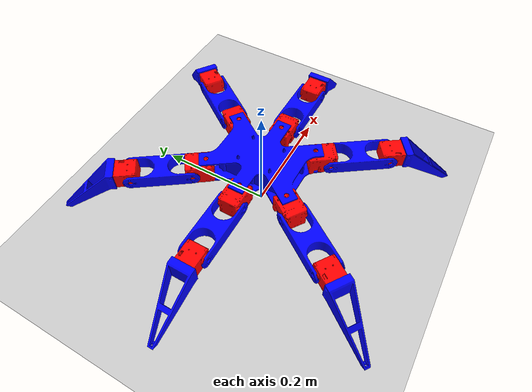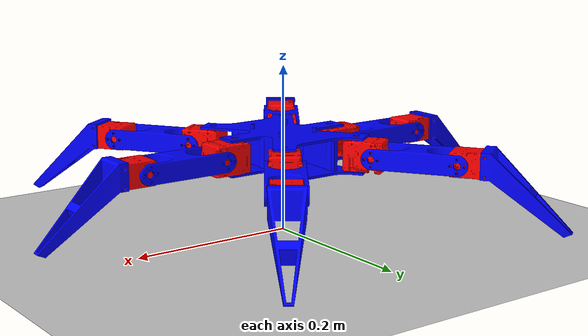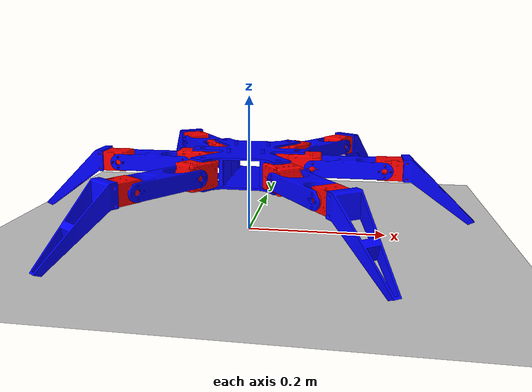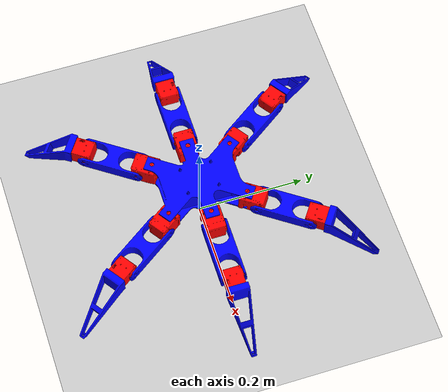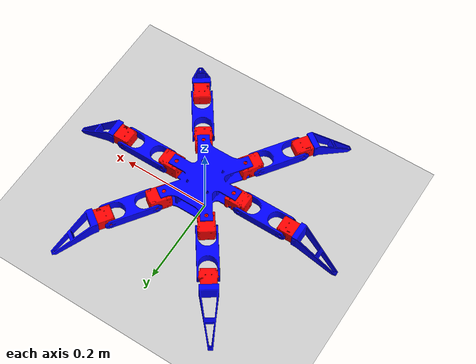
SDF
<?xml version="1.0"?>
<sdf version="1.10">
  <world name="hexspider_world">
    <physics name="5ms" type="ignored">
      <max_step_size>0.001</max_step_size>
      <real_time_factor>1.0</real_time_factor>
    </physics>
    <plugin filename="gz-sim-physics-system" name="gz::sim::systems::Physics">
        </plugin>
    <plugin filename="gz-sim-user-commands-system" name="gz::sim::systems::UserCommands">
        </plugin>
    <plugin filename="gz-sim-scene-broadcaster-system" name="gz::sim::systems::SceneBroadcaster">
        </plugin>

    <gui fullscreen="1">
    </gui>

    <light type="directional" name="sun">
      <cast_shadows>true</cast_shadows>
      <pose>0 0 10 0 0 0</pose>
      <diffuse>0.8 0.8 0.8 1</diffuse>
      <specular>0.2 0.2 0.2 1</specular>
      <attenuation>
        <range>1000</range>
        <constant>0.9</constant>
        <linear>0.01</linear>
        <quadratic>0.001</quadratic>
      </attenuation>
      <direction>-0.5 0.1 -0.9</direction>
    </light>
    <model name="ground_plane">
      <static>true</static>
      <link name="link">
        <collision name="collision">
          <geometry>
            <plane>
              <normal>0 0 1</normal>
            </plane>
          </geometry>
          <surface>
      </surface>
        </collision>
        <visual name="visual">
          <geometry>
            <plane>
              <normal>0 0 1</normal>
              <size>100 100</size>
            </plane>
          </geometry>
          <material>
            <ambient>0.8 0.8 0.8 1</ambient>
            <diffuse>0.8 0.8 0.8 1</diffuse>
            <specular>0.8 0.8 0.8 1</specular>
          </material>
        </visual>
      </link>
    </model>
    <include>
      <uri>model://models/hexspider</uri>
    </include>
  </world>
</sdf>

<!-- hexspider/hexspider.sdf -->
<sdf version="1.10">
  <model name="hexspider" canonical_link="chassis">
    <pose>0 0 0 0 0 0</pose>
    <plugin filename="gz-sim-joint-state-publisher-system" name="gz::sim::systems::JointStatePublisher"></plugin>
    <plugin filename="gz-sim-joint-position-controller-system" name="gz::sim::systems::JointPositionController">
      <joint_name>leg_a_servo_1</joint_name>
      <p_gain>10</p_gain>
    </plugin>
    <plugin filename="gz-sim-joint-position-controller-system" name="gz::sim::systems::JointPositionController">
      <joint_name>leg_a_servo_2</joint_name>
      <p_gain>10</p_gain>
    </plugin>
    <plugin filename="gz-sim-joint-position-controller-system" name="gz::sim::systems::JointPositionController">
      <joint_name>leg_a_servo_3</joint_name>
      <p_gain>10</p_gain>
    </plugin>
    <plugin filename="gz-sim-joint-position-controller-system" name="gz::sim::systems::JointPositionController">
      <joint_name>leg_b_servo_1</joint_name>
      <p_gain>10</p_gain>
    </plugin>
    <plugin filename="gz-sim-joint-position-controller-system" name="gz::sim::systems::JointPositionController">
      <joint_name>leg_b_servo_2</joint_name>
      <p_gain>10</p_gain>
    </plugin>
    <plugin filename="gz-sim-joint-position-controller-system" name="gz::sim::systems::JointPositionController">
      <joint_name>leg_b_servo_3</joint_name>
      <p_gain>10</p_gain>
    </plugin>
    <plugin filename="gz-sim-joint-position-controller-system" name="gz::sim::systems::JointPositionController">
      <joint_name>leg_c_servo_1</joint_name>
      <p_gain>10</p_gain>
    </plugin>
    <plugin filename="gz-sim-joint-position-controller-system" name="gz::sim::systems::JointPositionController">
      <joint_name>leg_c_servo_2</joint_name>
      <p_gain>10</p_gain>
    </plugin>
    <plugin filename="gz-sim-joint-position-controller-system" name="gz::sim::systems::JointPositionController">
      <joint_name>leg_c_servo_3</joint_name>
      <p_gain>10</p_gain>
    </plugin>
    <plugin filename="gz-sim-joint-position-controller-system" name="gz::sim::systems::JointPositionController">
      <joint_name>leg_d_servo_1</joint_name>
      <p_gain>10</p_gain>
    </plugin>
    <plugin filename="gz-sim-joint-position-controller-system" name="gz::sim::systems::JointPositionController">
      <joint_name>leg_d_servo_2</joint_name>
      <p_gain>10</p_gain>
    </plugin>
    <plugin filename="gz-sim-joint-position-controller-system" name="gz::sim::systems::JointPositionController">
      <joint_name>leg_d_servo_3</joint_name>
      <p_gain>10</p_gain>
    </plugin>
    <plugin filename="gz-sim-joint-position-controller-system" name="gz::sim::systems::JointPositionController">
      <joint_name>leg_e_servo_1</joint_name>
      <p_gain>10</p_gain>
    </plugin>
    <plugin filename="gz-sim-joint-position-controller-system" name="gz::sim::systems::JointPositionController">
      <joint_name>leg_e_servo_2</joint_name>
      <p_gain>10</p_gain>
    </plugin>
    <plugin filename="gz-sim-joint-position-controller-system" name="gz::sim::systems::JointPositionController">
      <joint_name>leg_e_servo_3</joint_name>
      <p_gain>10</p_gain>
    </plugin>
    <plugin filename="gz-sim-joint-position-controller-system" name="gz::sim::systems::JointPositionController">
      <joint_name>leg_f_servo_1</joint_name>
      <p_gain>10</p_gain>
    </plugin>
    <plugin filename="gz-sim-joint-position-controller-system" name="gz::sim::systems::JointPositionController">
      <joint_name>leg_f_servo_2</joint_name>
      <p_gain>10</p_gain>
    </plugin>
    <plugin filename="gz-sim-joint-position-controller-system" name="gz::sim::systems::JointPositionController">
      <joint_name>leg_f_servo_3</joint_name>
      <p_gain>10</p_gain>
    </plugin>
    <link name="chassis">
      <pose relative_to="__model__">0 0 0.1 0 0 0</pose>
      <inertial>
        <mass>0.188490</mass>
        <density>100</density>
        <inertia>
          <ixx>4.024e-04</ixx>
          <ixy>5.662e-19</ixy>
          <ixz>-5.234e-18</ixz>
          <iyy>2.646e-04</iyy>
          <iyz>0</iyz>
          <izz>5.502e-04</izz>
        </inertia>
      </inertial>
      <visual name="chassis_visual">
        <geometry>
          <mesh>
            <uri>model://hexspider/meshes/Chassis_v37.stl</uri>
            <scale>0.001 0.001 0.001</scale>
          </mesh>
        </geometry>
        <material>
          <ambient>0 0 1 1</ambient>
          <diffuse>0 0 1 1</diffuse>
          <specular>0 0 1 1</specular>
        </material>
        <transparency>0</transparency>
        <cast_shadows>1</cast_shadows>
      </visual>
      <collision name="chassis_collision">
        <geometry>
          <box>
            <size>0.164 0.182020 0.05</size>
          </box>
        </geometry>
      </collision>
    </link>
    <link name="leg_a_2xl_430">
      <pose relative_to="chassis">0.058219 -0.083748 0.0 0 0 0.61</pose>
      <inertial>
        <mass>0.098</mass>
        <inertia>
          <ixx>0.00002686</ixx>
          <ixy>0.000000525</ixy>
          <ixz>0.000000288</ixz>
          <iyy>0.000016993</iyy>
          <iyz>-0.000000524</iyz>
          <izz>0.000026995</izz>
        </inertia>
      </inertial>
      <visual name="visual">
        <geometry>
          <mesh>
            <uri>model://hexspider/meshes/2XL-430_v4.stl</uri>
            <scale>0.001 0.001 0.001</scale>
          </mesh>
        </geometry>
        <material>
          <ambient>1.0 0.0 0.0 1</ambient>
          <diffuse>1.0 0.0 0.0 1</diffuse>
          <specular>1.0 0.0 0.0 1</specular>
        </material>
        <transparency>0</transparency>
        <cast_shadows>1</cast_shadows>
      </visual>
      <collision name="collision">
        <geometry>
          <box>
            <size>0.036 0.0465 0.036</size>
          </box>
        </geometry>
      </collision>
    </link>
    <link name="leg_a_coxa">
      <pose relative_to="leg_a_2xl_430">0 -0.062 0 0 0 0</pose>
      <inertial>
        <mass>0.059976</mass>
        <inertia>
          <ixx>0.000019426</ixx>
          <ixy>-7.7e-11</ixy>
          <ixz>4.885e-14</ixz>
          <iyy>0.000032981</iyy>
          <iyz>0</iyz>
          <izz>0.000046665</izz>
        </inertia>
      </inertial>
      <visual name="visual">
        <pose relative_to="leg_a_coxa">0.0 -0.144 0 0 0 1.57</pose>
        <geometry>
          <mesh>
            <uri>model://hexspider/meshes/Coxa_v37.stl</uri>
            <scale>0.001 0.001 0.001</scale>
          </mesh>
        </geometry>
        <material>
          <ambient>0 0 1 1</ambient>
          <diffuse>0 0 1 1</diffuse>
          <specular>0 0 1 1</specular>
        </material>
        <transparency>0</transparency>
        <cast_shadows>1</cast_shadows>
      </visual>
      <collision name="collision">
        <geometry>
          <box>
            <size>0.046 0.124 0.024</size>
          </box>
        </geometry>
      </collision>
    </link>
    <link name="leg_a_xl_430">
      <pose relative_to="leg_a_coxa">0.0 -0.05 0.0 0.0 1.57 0.0</pose>
      <inertial>
        <mass>0.098</mass>
        <inertia>
          <ixx>0.00002686</ixx>
          <ixy>0.000000525</ixy>
          <ixz>0.000000288</ixz>
          <iyy>0.000016993</iyy>
          <iyz>-0.000000524</iyz>
          <izz>0.000026995</izz>
        </inertia>
      </inertial>
      <visual name="visual">
        <geometry>
          <mesh>
            <uri>model://hexspider/meshes/XL-430_new_v2.stl</uri>
            <scale>0.001 0.001 0.001</scale>
          </mesh>
        </geometry>
        <material>
          <ambient>1 0 0 1</ambient>
          <diffuse>1 0 0 1</diffuse>
          <specular>1 0 0 1</specular>
        </material>
        <transparency>0</transparency>
        <cast_shadows>1</cast_shadows>
      </visual>
      <collision name="collision">
        <geometry>
          <box>
            <size>0.0285 0.0465 0.034</size>
          </box>
        </geometry>
      </collision>
    </link>
    <link name="leg_a_femur">
      <pose relative_to="leg_a_xl_430">0.04511 -0.06325 0 1.57 0.0 -1.57</pose>
      <inertial>
        <mass>0.028812</mass>
        <inertia>
          <ixx>0.000034156</ixx>
          <ixy>0</ixy>
          <ixz>0.000012503</ixz>
          <iyy>0.000036442</iyy>
          <iyz>0</iyz>
          <izz>0.000010478</izz>
        </inertia>
      </inertial>
      <visual name="visual">
        <pose relative_to="leg_a_femur">-0.24056 0.0 -0.038 0 -0.44 0</pose>
        <geometry>
          <mesh>
            <uri>model://hexspider/meshes/Femur_v41.stl</uri>
            <scale>0.001 0.001 0.001</scale>
          </mesh>
        </geometry>
        <material>
          <ambient>0 0 1 1</ambient>
          <diffuse>0 0 1 1</diffuse>
          <specular>0 0 1 1</specular>
        </material>
        <transparency>0</transparency>
        <cast_shadows>1</cast_shadows>
      </visual>
      <collision name="collision">
        <pose relative_to="leg_a_femur">0 0 0.012 0 -0.96 0</pose>
        <geometry>
          <cylinder>
           <radius>0.005</radius>
           <length>0.150</length>
           </cylinder>
        </geometry>
      </collision>
    </link>
    <link name="leg_b_2xl_430">
      <pose relative_to="chassis">0.082 0 0.0 0 0 1.57</pose>
      <inertial>
        <mass>0.098</mass>
        <inertia>
          <ixx>0.00002686</ixx>
          <ixy>0.000000525</ixy>
          <ixz>0.000000288</ixz>
          <iyy>0.000016993</iyy>
          <iyz>-0.000000524</iyz>
          <izz>0.000026995</izz>
        </inertia>
      </inertial>
      <visual name="visual">
        <geometry>
          <mesh>
            <uri>model://hexspider/meshes/2XL-430_v4.stl</uri>
            <scale>0.001 0.001 0.001</scale>
          </mesh>
        </geometry>
        <material>
          <ambient>1.0 0.0 0.0 1</ambient>
          <diffuse>1.0 0.0 0.0 1</diffuse>
          <specular>1.0 0.0 0.0 1</specular>
        </material>
        <transparency>0</transparency>
        <cast_shadows>1</cast_shadows>
      </visual>
      <collision name="collision">
        <geometry>
          <box>
            <size>0.036 0.0465 0.036</size>
          </box>
        </geometry>
      </collision>
    </link>
    <link name="leg_b_coxa">
      <pose relative_to="leg_b_2xl_430">0 -0.062 0 0 0 0</pose>
      <inertial>
        <mass>0.059976</mass>
        <inertia>
          <ixx>0.000019426</ixx>
          <ixy>-7.7e-11</ixy>
          <ixz>4.885e-14</ixz>
          <iyy>0.000032981</iyy>
          <iyz>0</iyz>
          <izz>0.000046665</izz>
        </inertia>
      </inertial>
      <visual name="visual">
        <pose relative_to="leg_b_coxa">0.0 -0.144 0 0 0 1.57</pose>
        <geometry>
          <mesh>
            <uri>model://hexspider/meshes/Coxa_v37.stl</uri>
            <scale>0.001 0.001 0.001</scale>
          </mesh>
        </geometry>
        <material>
          <ambient>0 0 1 1</ambient>
          <diffuse>0 0 1 1</diffuse>
          <specular>0 0 1 1</specular>
        </material>
        <transparency>0</transparency>
        <cast_shadows>1</cast_shadows>
      </visual>
      <collision name="collision">
        <geometry>
          <box>
            <size>0.046 0.124 0.024</size>
          </box>
        </geometry>
      </collision>
    </link>
    <link name="leg_b_xl_430">
      <pose relative_to="leg_b_coxa">0.0 -0.05 0.0 0.0 1.57 0.0</pose>
      <inertial>
        <mass>0.098</mass>
        <inertia>
          <ixx>0.00002686</ixx>
          <ixy>0.000000525</ixy>
          <ixz>0.000000288</ixz>
          <iyy>0.000016993</iyy>
          <iyz>-0.000000524</iyz>
          <izz>0.000026995</izz>
        </inertia>
      </inertial>
      <visual name="visual">
        <geometry>
          <mesh>
            <uri>model://hexspider/meshes/XL-430_new_v2.stl</uri>
            <scale>0.001 0.001 0.001</scale>
          </mesh>
        </geometry>
        <material>
          <ambient>1 0 0 1</ambient>
          <diffuse>1 0 0 1</diffuse>
          <specular>1 0 0 1</specular>
        </material>
        <transparency>0</transparency>
        <cast_shadows>1</cast_shadows>
      </visual>
      <collision name="collision">
        <geometry>
          <box>
            <size>0.0285 0.0465 0.034</size>
          </box>
        </geometry>
      </collision>
    </link>
    <link name="leg_b_femur">
      <pose relative_to="leg_b_xl_430">0.04511 -0.06325 0 1.57 0.0 -1.57</pose>
      <inertial>
        <mass>0.028812</mass>
        <inertia>
          <ixx>0.000034156</ixx>
          <ixy>0</ixy>
          <ixz>0.000012503</ixz>
          <iyy>0.000036442</iyy>
          <iyz>0</iyz>
          <izz>0.000010478</izz>
        </inertia>
      </inertial>
      <visual name="visual">
        <pose relative_to="leg_b_femur">-0.24056 0.0 -0.038 0 -0.44 0</pose>
        <geometry>
          <mesh>
            <uri>model://hexspider/meshes/Femur_v41.stl</uri>
            <scale>0.001 0.001 0.001</scale>
          </mesh>
        </geometry>
        <material>
          <ambient>0 0 1 1</ambient>
          <diffuse>0 0 1 1</diffuse>
          <specular>0 0 1 1</specular>
        </material>
        <transparency>0</transparency>
        <cast_shadows>1</cast_shadows>
      </visual>
      <collision name="collision">
        <pose relative_to="leg_b_femur">0 0 0.012 0 -0.96 0</pose>
        <geometry>
          <cylinder>
           <radius>0.005</radius>
           <length>0.150</length>
           </cylinder>
        </geometry>
      </collision>
    </link>
    <link name="leg_c_2xl_430">
      <pose relative_to="chassis">0.058219 0.083748 0.0 0 0 2.53</pose>
      <inertial>
        <mass>0.098</mass>
        <inertia>
          <ixx>0.00002686</ixx>
          <ixy>0.000000525</ixy>
          <ixz>0.000000288</ixz>
          <iyy>0.000016993</iyy>
          <iyz>-0.000000524</iyz>
          <izz>0.000026995</izz>
        </inertia>
      </inertial>
      <visual name="visual">
        <geometry>
          <mesh>
            <uri>model://hexspider/meshes/2XL-430_v4.stl</uri>
            <scale>0.001 0.001 0.001</scale>
          </mesh>
        </geometry>
        <material>
          <ambient>1.0 0.0 0.0 1</ambient>
          <diffuse>1.0 0.0 0.0 1</diffuse>
          <specular>1.0 0.0 0.0 1</specular>
        </material>
        <transparency>0</transparency>
        <cast_shadows>1</cast_shadows>
      </visual>
      <collision name="collision">
        <geometry>
          <box>
            <size>0.036 0.0465 0.036</size>
          </box>
        </geometry>
      </collision>
    </link>
    <link name="leg_c_coxa">
      <pose relative_to="leg_c_2xl_430">0 -0.062 0 0 0 0</pose>
      <inertial>
        <mass>0.059976</mass>
        <inertia>
          <ixx>0.000019426</ixx>
          <ixy>-7.7e-11</ixy>
          <ixz>4.885e-14</ixz>
          <iyy>0.000032981</iyy>
          <iyz>0</iyz>
          <izz>0.000046665</izz>
        </inertia>
      </inertial>
      <visual name="visual">
        <pose relative_to="leg_c_coxa">0.0 -0.144 0 0 0 1.57</pose>
        <geometry>
          <mesh>
            <uri>model://hexspider/meshes/Coxa_v37.stl</uri>
            <scale>0.001 0.001 0.001</scale>
          </mesh>
        </geometry>
        <material>
          <ambient>0 0 1 1</ambient>
          <diffuse>0 0 1 1</diffuse>
          <specular>0 0 1 1</specular>
        </material>
        <transparency>0</transparency>
        <cast_shadows>1</cast_shadows>
      </visual>
      <collision name="collision">
        <geometry>
          <box>
            <size>0.046 0.124 0.024</size>
          </box>
        </geometry>
      </collision>
    </link>
    <link name="leg_c_xl_430">
      <pose relative_to="leg_c_coxa">0.0 -0.05 0.0 0.0 1.57 0.0</pose>
      <inertial>
        <mass>0.098</mass>
        <inertia>
          <ixx>0.00002686</ixx>
          <ixy>0.000000525</ixy>
          <ixz>0.000000288</ixz>
          <iyy>0.000016993</iyy>
          <iyz>-0.000000524</iyz>
          <izz>0.000026995</izz>
        </inertia>
      </inertial>
      <visual name="visual">
        <geometry>
          <mesh>
            <uri>model://hexspider/meshes/XL-430_new_v2.stl</uri>
            <scale>0.001 0.001 0.001</scale>
          </mesh>
        </geometry>
        <material>
          <ambient>1 0 0 1</ambient>
          <diffuse>1 0 0 1</diffuse>
          <specular>1 0 0 1</specular>
        </material>
        <transparency>0</transparency>
        <cast_shadows>1</cast_shadows>
      </visual>
      <collision name="collision">
        <geometry>
          <box>
            <size>0.0285 0.0465 0.034</size>
          </box>
        </geometry>
      </collision>
    </link>
    <link name="leg_c_femur">
      <pose relative_to="leg_c_xl_430">0.04511 -0.06325 0 1.57 0.0 -1.57</pose>
      <inertial>
        <mass>0.028812</mass>
        <inertia>
          <ixx>0.000034156</ixx>
          <ixy>0</ixy>
          <ixz>0.000012503</ixz>
          <iyy>0.000036442</iyy>
          <iyz>0</iyz>
          <izz>0.000010478</izz>
        </inertia>
      </inertial>
      <visual name="visual">
        <pose relative_to="leg_c_femur">-0.24056 0.0 -0.038 0 -0.44 0</pose>
        <geometry>
          <mesh>
            <uri>model://hexspider/meshes/Femur_v41.stl</uri>
            <scale>0.001 0.001 0.001</scale>
          </mesh>
        </geometry>
        <material>
          <ambient>0 0 1 1</ambient>
          <diffuse>0 0 1 1</diffuse>
          <specular>0 0 1 1</specular>
        </material>
        <transparency>0</transparency>
        <cast_shadows>1</cast_shadows>
      </visual>
      <collision name="collision">
        <pose relative_to="leg_c_femur">0 0 0.012 0 -0.96 0</pose>
        <geometry>
          <cylinder>
           <radius>0.005</radius>
           <length>0.150</length>
           </cylinder>
        </geometry>
      </collision>
    </link>
    <link name="leg_d_2xl_430">
      <pose relative_to="chassis">-0.058219 -0.083748 0.0 0 0 -0.61</pose>
      <inertial>
        <mass>0.098</mass>
        <inertia>
          <ixx>0.00002686</ixx>
          <ixy>0.000000525</ixy>
          <ixz>0.000000288</ixz>
          <iyy>0.000016993</iyy>
          <iyz>-0.000000524</iyz>
          <izz>0.000026995</izz>
        </inertia>
      </inertial>
      <visual name="visual">
        <geometry>
          <mesh>
            <uri>model://hexspider/meshes/2XL-430_v4.stl</uri>
            <scale>0.001 0.001 0.001</scale>
          </mesh>
        </geometry>
        <material>
          <ambient>1.0 0.0 0.0 1</ambient>
          <diffuse>1.0 0.0 0.0 1</diffuse>
          <specular>1.0 0.0 0.0 1</specular>
        </material>
        <transparency>0</transparency>
        <cast_shadows>1</cast_shadows>
      </visual>
      <collision name="collision">
        <geometry>
          <box>
            <size>0.036 0.0465 0.036</size>
          </box>
        </geometry>
      </collision>
    </link>
    <link name="leg_d_coxa">
      <pose relative_to="leg_d_2xl_430">0 -0.062 0 0 0 0</pose>
      <inertial>
        <mass>0.059976</mass>
        <inertia>
          <ixx>0.000019426</ixx>
          <ixy>-7.7e-11</ixy>
          <ixz>4.885e-14</ixz>
          <iyy>0.000032981</iyy>
          <iyz>0</iyz>
          <izz>0.000046665</izz>
        </inertia>
      </inertial>
      <visual name="visual">
        <pose relative_to="leg_d_coxa">0.0 -0.144 0 0 0 1.57</pose>
        <geometry>
          <mesh>
            <uri>model://hexspider/meshes/Coxa_v37.stl</uri>
            <scale>0.001 0.001 0.001</scale>
          </mesh>
        </geometry>
        <material>
          <ambient>0 0 1 1</ambient>
          <diffuse>0 0 1 1</diffuse>
          <specular>0 0 1 1</specular>
        </material>
        <transparency>0</transparency>
        <cast_shadows>1</cast_shadows>
      </visual>
      <collision name="collision">
        <geometry>
          <box>
            <size>0.046 0.124 0.024</size>
          </box>
        </geometry>
      </collision>
    </link>
    <link name="leg_d_xl_430">
      <pose relative_to="leg_d_coxa">0.0 -0.05 0.0 0.0 1.57 0.0</pose>
      <inertial>
        <mass>0.098</mass>
        <inertia>
          <ixx>0.00002686</ixx>
          <ixy>0.000000525</ixy>
          <ixz>0.000000288</ixz>
          <iyy>0.000016993</iyy>
          <iyz>-0.000000524</iyz>
          <izz>0.000026995</izz>
        </inertia>
      </inertial>
      <visual name="visual">
        <geometry>
          <mesh>
            <uri>model://hexspider/meshes/XL-430_new_v2.stl</uri>
            <scale>0.001 0.001 0.001</scale>
          </mesh>
        </geometry>
        <material>
          <ambient>1 0 0 1</ambient>
          <diffuse>1 0 0 1</diffuse>
          <specular>1 0 0 1</specular>
        </material>
        <transparency>0</transparency>
        <cast_shadows>1</cast_shadows>
      </visual>
      <collision name="collision">
        <geometry>
          <box>
            <size>0.0285 0.0465 0.034</size>
          </box>
        </geometry>
      </collision>
    </link>
    <link name="leg_d_femur">
      <pose relative_to="leg_d_xl_430">0.04511 -0.06325 0 1.57 0.0 -1.57</pose>
      <inertial>
        <mass>0.028812</mass>
        <inertia>
          <ixx>0.000034156</ixx>
          <ixy>0</ixy>
          <ixz>0.000012503</ixz>
          <iyy>0.000036442</iyy>
          <iyz>0</iyz>
          <izz>0.000010478</izz>
        </inertia>
      </inertial>
      <visual name="visual">
        <pose relative_to="leg_d_femur">-0.24056 0.0 -0.038 0 -0.44 0</pose>
        <geometry>
          <mesh>
            <uri>model://hexspider/meshes/Femur_v41.stl</uri>
            <scale>0.001 0.001 0.001</scale>
          </mesh>
        </geometry>
        <material>
          <ambient>0 0 1 1</ambient>
          <diffuse>0 0 1 1</diffuse>
          <specular>0 0 1 1</specular>
        </material>
        <transparency>0</transparency>
        <cast_shadows>1</cast_shadows>
      </visual>
      <collision name="collision">
        <pose relative_to="leg_d_femur">0 0 0.012 0 -0.96 0</pose>
        <geometry>
          <cylinder>
           <radius>0.005</radius>
           <length>0.150</length>
           </cylinder>
        </geometry>
      </collision>
    </link>
    <link name="leg_e_2xl_430">
      <pose relative_to="chassis">-0.082 0 0.0 0 0 -1.57</pose>
      <inertial>
        <mass>0.098</mass>
        <inertia>
          <ixx>0.00002686</ixx>
          <ixy>0.000000525</ixy>
          <ixz>0.000000288</ixz>
          <iyy>0.000016993</iyy>
          <iyz>-0.000000524</iyz>
          <izz>0.000026995</izz>
        </inertia>
      </inertial>
      <visual name="visual">
        <geometry>
          <mesh>
            <uri>model://hexspider/meshes/2XL-430_v4.stl</uri>
            <scale>0.001 0.001 0.001</scale>
          </mesh>
        </geometry>
        <material>
          <ambient>1.0 0.0 0.0 1</ambient>
          <diffuse>1.0 0.0 0.0 1</diffuse>
          <specular>1.0 0.0 0.0 1</specular>
        </material>
        <transparency>0</transparency>
        <cast_shadows>1</cast_shadows>
      </visual>
      <collision name="collision">
        <geometry>
          <box>
            <size>0.036 0.0465 0.036</size>
          </box>
        </geometry>
      </collision>
    </link>
    <link name="leg_e_coxa">
      <pose relative_to="leg_e_2xl_430">0 -0.062 0 0 0 0</pose>
      <inertial>
        <mass>0.059976</mass>
        <inertia>
          <ixx>0.000019426</ixx>
          <ixy>-7.7e-11</ixy>
          <ixz>4.885e-14</ixz>
          <iyy>0.000032981</iyy>
          <iyz>0</iyz>
          <izz>0.000046665</izz>
        </inertia>
      </inertial>
      <visual name="visual">
        <pose relative_to="leg_e_coxa">0.0 -0.144 0 0 0 1.57</pose>
        <geometry>
          <mesh>
            <uri>model://hexspider/meshes/Coxa_v37.stl</uri>
            <scale>0.001 0.001 0.001</scale>
          </mesh>
        </geometry>
        <material>
          <ambient>0 0 1 1</ambient>
          <diffuse>0 0 1 1</diffuse>
          <specular>0 0 1 1</specular>
        </material>
        <transparency>0</transparency>
        <cast_shadows>1</cast_shadows>
      </visual>
      <collision name="collision">
        <geometry>
          <box>
            <size>0.046 0.124 0.024</size>
          </box>
        </geometry>
      </collision>
    </link>
    <link name="leg_e_xl_430">
      <pose relative_to="leg_e_coxa">0.0 -0.05 0.0 0.0 1.57 0.0</pose>
      <inertial>
        <mass>0.098</mass>
        <inertia>
          <ixx>0.00002686</ixx>
          <ixy>0.000000525</ixy>
          <ixz>0.000000288</ixz>
          <iyy>0.000016993</iyy>
          <iyz>-0.000000524</iyz>
          <izz>0.000026995</izz>
        </inertia>
      </inertial>
      <visual name="visual">
        <geometry>
          <mesh>
            <uri>model://hexspider/meshes/XL-430_new_v2.stl</uri>
            <scale>0.001 0.001 0.001</scale>
          </mesh>
        </geometry>
        <material>
          <ambient>1 0 0 1</ambient>
          <diffuse>1 0 0 1</diffuse>
          <specular>1 0 0 1</specular>
        </material>
        <transparency>0</transparency>
        <cast_shadows>1</cast_shadows>
      </visual>
      <collision name="collision">
        <geometry>
          <box>
            <size>0.0285 0.0465 0.034</size>
          </box>
        </geometry>
      </collision>
    </link>
    <link name="leg_e_femur">
      <pose relative_to="leg_e_xl_430">0.04511 -0.06325 0 1.57 0.0 -1.57</pose>
      <inertial>
        <mass>0.028812</mass>
        <inertia>
          <ixx>0.000034156</ixx>
          <ixy>0</ixy>
          <ixz>0.000012503</ixz>
          <iyy>0.000036442</iyy>
          <iyz>0</iyz>
          <izz>0.000010478</izz>
        </inertia>
      </inertial>
      <visual name="visual">
        <pose relative_to="leg_e_femur">-0.24056 0.0 -0.038 0 -0.44 0</pose>
        <geometry>
          <mesh>
            <uri>model://hexspider/meshes/Femur_v41.stl</uri>
            <scale>0.001 0.001 0.001</scale>
          </mesh>
        </geometry>
        <material>
          <ambient>0 0 1 1</ambient>
          <diffuse>0 0 1 1</diffuse>
          <specular>0 0 1 1</specular>
        </material>
        <transparency>0</transparency>
        <cast_shadows>1</cast_shadows>
      </visual>
      <collision name="collision">
        <pose relative_to="leg_e_femur">0 0 0.012 0 -0.96 0</pose>
        <geometry>
          <cylinder>
           <radius>0.005</radius>
           <length>0.150</length>
           </cylinder>
        </geometry>
      </collision>
    </link>
    <link name="leg_f_2xl_430">
      <pose relative_to="chassis">-0.058219 0.083748 0.0 0 0 -2.53</pose>
      <inertial>
        <mass>0.098</mass>
        <inertia>
          <ixx>0.00002686</ixx>
          <ixy>0.000000525</ixy>
          <ixz>0.000000288</ixz>
          <iyy>0.000016993</iyy>
          <iyz>-0.000000524</iyz>
          <izz>0.000026995</izz>
        </inertia>
      </inertial>
      <visual name="visual">
        <geometry>
          <mesh>
            <uri>model://hexspider/meshes/2XL-430_v4.stl</uri>
            <scale>0.001 0.001 0.001</scale>
          </mesh>
        </geometry>
        <material>
          <ambient>1.0 0.0 0.0 1</ambient>
          <diffuse>1.0 0.0 0.0 1</diffuse>
          <specular>1.0 0.0 0.0 1</specular>
        </material>
        <transparency>0</transparency>
        <cast_shadows>1</cast_shadows>
      </visual>
      <collision name="collision">
        <geometry>
          <box>
            <size>0.036 0.0465 0.036</size>
          </box>
        </geometry>
      </collision>
    </link>
    <link name="leg_f_coxa">
      <pose relative_to="leg_f_2xl_430">0 -0.062 0 0 0 0</pose>
      <inertial>
        <mass>0.059976</mass>
        <inertia>
          <ixx>0.000019426</ixx>
          <ixy>-7.7e-11</ixy>
          <ixz>4.885e-14</ixz>
          <iyy>0.000032981</iyy>
          <iyz>0</iyz>
          <izz>0.000046665</izz>
        </inertia>
      </inertial>
      <visual name="visual">
        <pose relative_to="leg_f_coxa">0.0 -0.144 0 0 0 1.57</pose>
        <geometry>
          <mesh>
            <uri>model://hexspider/meshes/Coxa_v37.stl</uri>
            <scale>0.001 0.001 0.001</scale>
          </mesh>
        </geometry>
        <material>
          <ambient>0 0 1 1</ambient>
          <diffuse>0 0 1 1</diffuse>
          <specular>0 0 1 1</specular>
        </material>
        <transparency>0</transparency>
        <cast_shadows>1</cast_shadows>
      </visual>
      <collision name="collision">
        <geometry>
          <box>
            <size>0.046 0.124 0.024</size>
          </box>
        </geometry>
      </collision>
    </link>
    <link name="leg_f_xl_430">
      <pose relative_to="leg_f_coxa">0.0 -0.05 0.0 0.0 1.57 0.0</pose>
      <inertial>
        <mass>0.098</mass>
        <inertia>
          <ixx>0.00002686</ixx>
          <ixy>0.000000525</ixy>
          <ixz>0.000000288</ixz>
          <iyy>0.000016993</iyy>
          <iyz>-0.000000524</iyz>
          <izz>0.000026995</izz>
        </inertia>
      </inertial>
      <visual name="visual">
        <geometry>
          <mesh>
            <uri>model://hexspider/meshes/XL-430_new_v2.stl</uri>
            <scale>0.001 0.001 0.001</scale>
          </mesh>
        </geometry>
        <material>
          <ambient>1 0 0 1</ambient>
          <diffuse>1 0 0 1</diffuse>
          <specular>1 0 0 1</specular>
        </material>
        <transparency>0</transparency>
        <cast_shadows>1</cast_shadows>
      </visual>
      <collision name="collision">
        <geometry>
          <box>
            <size>0.0285 0.0465 0.034</size>
          </box>
        </geometry>
      </collision>
    </link>
    <link name="leg_f_femur">
      <pose relative_to="leg_f_xl_430">0.04511 -0.06325 0 1.57 0.0 -1.57</pose>
      <inertial>
        <mass>0.028812</mass>
        <inertia>
          <ixx>0.000034156</ixx>
          <ixy>0</ixy>
          <ixz>0.000012503</ixz>
          <iyy>0.000036442</iyy>
          <iyz>0</iyz>
          <izz>0.000010478</izz>
        </inertia>
      </inertial>
      <visual name="visual">
        <pose relative_to="leg_f_femur">-0.24056 0.0 -0.038 0 -0.44 0</pose>
        <geometry>
          <mesh>
            <uri>model://hexspider/meshes/Femur_v41.stl</uri>
            <scale>0.001 0.001 0.001</scale>
          </mesh>
        </geometry>
        <material>
          <ambient>0 0 1 1</ambient>
          <diffuse>0 0 1 1</diffuse>
          <specular>0 0 1 1</specular>
        </material>
        <transparency>0</transparency>
        <cast_shadows>1</cast_shadows>
      </visual>
      <collision name="collision">
        <pose relative_to="leg_f_femur">0 0 0.012 0 -0.96 0</pose>
        <geometry>
          <cylinder>
           <radius>0.005</radius>
           <length>0.150</length>
           </cylinder>
        </geometry>
      </collision>
    </link>
    <joint name="leg_a_servo_1" type="revolute">
      <pose relative_to="leg_a_2xl_430">0 0.012 0.000 0 0 0</pose>
      <parent>chassis</parent>
      <child>leg_a_2xl_430</child>
      <axis>
        <xyz expressed_in="__model__">0 0 1</xyz>
        <limit>
          <effort>362</effort>
          <velocity>6</velocity>
          <lower>-1.57</lower>
          <upper>1.57</upper>
        </limit>
      </axis>
    </joint>
    <joint name="leg_a_servo_2" type="revolute">
      <pose relative_to="leg_a_2xl_430">0 -0.012 0.000 0 0 0</pose>
      <parent>leg_a_2xl_430</parent>
      <child>leg_a_coxa</child>
      <axis>
        <xyz expressed_in="leg_a_2xl_430">1 0 0</xyz>
        <limit>
          <effort>362</effort>
          <velocity>6</velocity>
          <lower>-1.570796</lower>
          <upper>1.570796</upper>
        </limit>
        <dynamics>
          <damping>0</damping>
        </dynamics>
      </axis>
    </joint>
    <joint name="leg_a_servo_3" type="revolute">
      <pose relative_to="leg_a_xl_430">0 0.012 0.000 0 0 0</pose>
      <parent>leg_a_coxa</parent>
      <child>leg_a_xl_430</child>
      <axis>
        <xyz expressed_in="leg_a_xl_430">0 0 1</xyz>
        <limit>
          <effort>362</effort>
          <velocity>6</velocity>
          <lower>-1.570796</lower>
          <upper>1.570796</upper>
        </limit>
        <dynamics>
          <damping>0</damping>
        </dynamics>
      </axis>
    </joint>
    <joint name="leg_a_femur_joint" type="fixed">
      <pose relative_to="leg_a_xl_430">0 0.012 0.000 0 0 0</pose>
      <parent>leg_a_xl_430</parent>
      <child>leg_a_femur</child>
    </joint>
    <joint name="leg_b_servo_1" type="revolute">
      <pose relative_to="leg_b_2xl_430">0 0.012 0.000 0 0 0</pose>
      <parent>chassis</parent>
      <child>leg_b_2xl_430</child>
      <axis>
        <xyz expressed_in="__model__">0 0 1</xyz>
        <dynamics>
          <damping>0.5</damping>
        </dynamics>
        <limit>
          <effort>362</effort>
          <velocity>6</velocity>
          <lower>-0.78539</lower>
          <upper>0.78539</upper>
        </limit>
      </axis>
    </joint>
    <joint name="leg_b_servo_2" type="revolute">
      <pose relative_to="leg_b_2xl_430">0 -0.012 0.000 0 0 0</pose>
      <parent>leg_b_2xl_430</parent>
      <child>leg_b_coxa</child>
      <axis>
        <xyz expressed_in="leg_b_2xl_430">1 0 0</xyz>
        <dynamics>
          <damping>0</damping>
        </dynamics>
        <limit>
          <effort>362</effort>
          <velocity>6</velocity>
          <lower>-1.570796</lower>
          <upper>1.570796</upper>
        </limit>
      </axis>
    </joint>
    <joint name="leg_b_servo_3" type="revolute">
      <pose relative_to="leg_b_xl_430">0 0.012 0.000 0 0 0</pose>
      <parent>leg_b_coxa</parent>
      <child>leg_b_xl_430</child>
      <axis>
        <xyz expressed_in="leg_b_xl_430">0 0 1</xyz>
        <dynamics>
          <damping>0</damping>
        </dynamics>
        <limit>
          <effort>362</effort>
          <velocity>6</velocity>
          <lower>-1.570796</lower>
          <upper>1.570796</upper>
        </limit>
      </axis>
    </joint>
    <joint name="leg_b_femur_joint" type="fixed">
      <pose relative_to="leg_b_xl_430">0 0.012 0.000 0 0 0</pose>
      <parent>leg_b_xl_430</parent>
      <child>leg_b_femur</child>
    </joint>
    <joint name="leg_c_servo_1" type="revolute">
      <pose relative_to="leg_c_2xl_430">0 0.012 0.000 0 0 0</pose>
      <parent>chassis</parent>
      <child>leg_c_2xl_430</child>
      <axis>
        <xyz expressed_in="__model__">0 0 1</xyz>
        <dynamics>
          <damping>0.5</damping>
        </dynamics>
        <limit>
          <effort>362</effort>
          <velocity>6</velocity>
          <lower>-0.78539</lower>
          <upper>0.78539</upper>
        </limit>
      </axis>
    </joint>
    <joint name="leg_c_servo_2" type="revolute">
      <pose relative_to="leg_c_2xl_430">0 -0.012 0.000 0 0 0</pose>
      <parent>leg_c_2xl_430</parent>
      <child>leg_c_coxa</child>
      <axis>
        <xyz expressed_in="leg_c_2xl_430">1 0 0</xyz>
        <dynamics>
          <damping>0</damping>
        </dynamics>
        <limit>
          <effort>362</effort>
          <velocity>6</velocity>
          <lower>-1.570796</lower>
          <upper>1.570796</upper>
        </limit>
      </axis>
    </joint>
    <joint name="leg_c_servo_3" type="revolute">
      <pose relative_to="leg_c_xl_430">0 0.012 0.000 0 0 0</pose>
      <parent>leg_c_coxa</parent>
      <child>leg_c_xl_430</child>
      <axis>
        <xyz expressed_in="leg_c_xl_430">0 0 1</xyz>
        <dynamics>
          <damping>0</damping>
        </dynamics>
        <limit>
          <effort>362</effort>
          <velocity>6</velocity>
          <lower>-1.570796</lower>
          <upper>1.570796</upper>
        </limit>
      </axis>
    </joint>
    <joint name="leg_c_femur_joint" type="fixed">
      <pose relative_to="leg_c_xl_430">0 0.012 0.000 0 0 0</pose>
      <parent>leg_c_xl_430</parent>
      <child>leg_c_femur</child>
    </joint>
    <joint name="leg_d_servo_1" type="revolute">
      <pose relative_to="leg_d_2xl_430">0 0.012 0.000 0 0 0</pose>
      <parent>chassis</parent>
      <child>leg_d_2xl_430</child>
      <axis>
        <xyz expressed_in="__model__">0 0 1</xyz>
        <dynamics>
          <damping>0.5</damping>
        </dynamics>
        <limit>
          <effort>362</effort>
          <velocity>6</velocity>
          <lower>-0.78539</lower>
          <upper>0.78539</upper>
        </limit>
      </axis>
    </joint>
    <joint name="leg_d_servo_2" type="revolute">
      <pose relative_to="leg_d_2xl_430">0 -0.012 0.000 0 0 0</pose>
      <parent>leg_d_2xl_430</parent>
      <child>leg_d_coxa</child>
      <axis>
        <xyz expressed_in="leg_d_2xl_430">1 0 0</xyz>
        <dynamics>
          <damping>0</damping>
        </dynamics>
        <limit>
          <effort>362</effort>
          <velocity>6</velocity>
          <lower>-1.570796</lower>
          <upper>1.570796</upper>
        </limit>
      </axis>
    </joint>
    <joint name="leg_d_servo_3" type="revolute">
      <pose relative_to="leg_d_xl_430">0 0.012 0.000 0 0 0</pose>
      <parent>leg_d_coxa</parent>
      <child>leg_d_xl_430</child>
      <axis>
        <xyz expressed_in="leg_d_xl_430">0 0 1</xyz>
        <dynamics>
          <damping>0</damping>
        </dynamics>
        <limit>
          <effort>362</effort>
          <velocity>6</velocity>
          <lower>-1.570796</lower>
          <upper>1.570796</upper>
        </limit>
      </axis>
    </joint>
    <joint name="leg_d_femur_joint" type="fixed">
      <pose relative_to="leg_d_xl_430">0 0.012 0.000 0 0 0</pose>
      <parent>leg_d_xl_430</parent>
      <child>leg_d_femur</child>
    </joint>
    <joint name="leg_e_servo_1" type="revolute">
      <pose relative_to="leg_e_2xl_430">0 0.012 0.000 0 0 0</pose>
      <parent>chassis</parent>
      <child>leg_e_2xl_430</child>
      <axis>
        <xyz expressed_in="__model__">0 0 1</xyz>
        <dynamics>
          <damping>0.5</damping>
        </dynamics>
        <limit>
          <effort>362</effort>
          <velocity>6</velocity>
          <lower>-0.78539</lower>
          <upper>0.78539</upper>
        </limit>
      </axis>
    </joint>
    <joint name="leg_e_servo_2" type="revolute">
      <pose relative_to="leg_e_2xl_430">0 -0.012 0.000 0 0 0</pose>
      <parent>leg_e_2xl_430</parent>
      <child>leg_e_coxa</child>
      <axis>
        <xyz expressed_in="leg_e_2xl_430">1 0 0</xyz>
        <dynamics>
          <damping>0</damping>
        </dynamics>
        <limit>
          <effort>362</effort>
          <velocity>6</velocity>
          <lower>-1.570796</lower>
          <upper>1.570796</upper>
        </limit>
      </axis>
    </joint>
    <joint name="leg_e_servo_3" type="revolute">
      <pose relative_to="leg_e_xl_430">0 0.012 0.000 0 0 0</pose>
      <parent>leg_e_coxa</parent>
      <child>leg_e_xl_430</child>
      <axis>
        <xyz expressed_in="leg_e_xl_430">0 0 1</xyz>
        <dynamics>
          <damping>0</damping>
        </dynamics>
        <limit>
          <effort>362</effort>
          <velocity>6</velocity>
          <lower>-1.570796</lower>
          <upper>1.570796</upper>
        </limit>
      </axis>
    </joint>
    <joint name="leg_e_femur_joint" type="fixed">
      <pose relative_to="leg_e_xl_430">0 0.012 0.000 0 0 0</pose>
      <parent>leg_e_xl_430</parent>
      <child>leg_e_femur</child>
    </joint>
    <joint name="leg_f_servo_1" type="revolute">
      <pose relative_to="leg_f_2xl_430">0 0.012 0.000 0 0 0</pose>
      <parent>chassis</parent>
      <child>leg_f_2xl_430</child>
      <axis>
        <xyz expressed_in="__model__">0 0 1</xyz>
        <dynamics>
          <damping>0.5</damping>
        </dynamics>
        <limit>
          <effort>362</effort>
          <velocity>6</velocity>
          <lower>-0.78539</lower>
          <upper>0.78539</upper>
        </limit>
      </axis>
    </joint>
    <joint name="leg_f_servo_2" type="revolute">
      <pose relative_to="leg_f_2xl_430">0 -0.012 0.000 0 0 0</pose>
      <parent>leg_f_2xl_430</parent>
      <child>leg_f_coxa</child>
      <axis>
        <xyz expressed_in="leg_f_2xl_430">1 0 0</xyz>
        <dynamics>
          <damping>0</damping>
        </dynamics>
        <limit>
          <effort>362</effort>
          <velocity>6</velocity>
          <lower>-1.570796</lower>
          <upper>1.570796</upper>
        </limit>
      </axis>
    </joint>
    <joint name="leg_f_servo_3" type="revolute">
      <pose relative_to="leg_f_xl_430">0 0.012 0.000 0 0 0</pose>
      <parent>leg_f_coxa</parent>
      <child>leg_f_xl_430</child>
      <axis>
        <xyz expressed_in="leg_f_xl_430">0 0 1</xyz>
        <dynamics>
          <damping>0</damping>
        </dynamics>
        <limit>
          <effort>362</effort>
          <velocity>6</velocity>
          <lower>-1.570796</lower>
          <upper>1.570796</upper>
        </limit>
      </axis>
    </joint>
    <joint name="leg_f_femur_joint" type="fixed">
      <pose relative_to="leg_f_xl_430">0 0.012 0.000 0 0 0</pose>
      <parent>leg_f_xl_430</parent>
      <child>leg_f_femur</child>
    </joint>
  </model>
</sdf>
